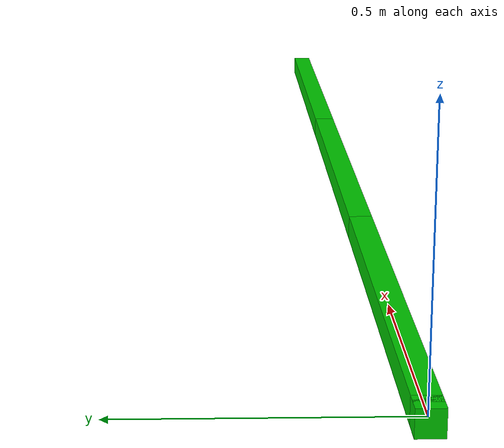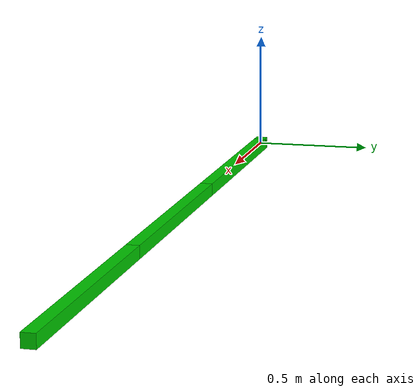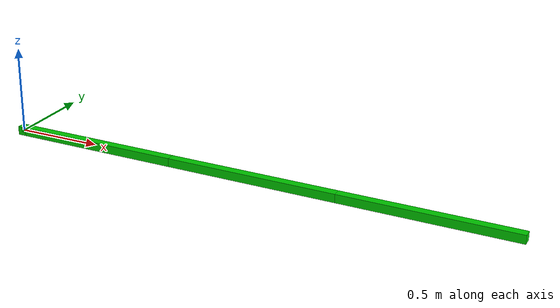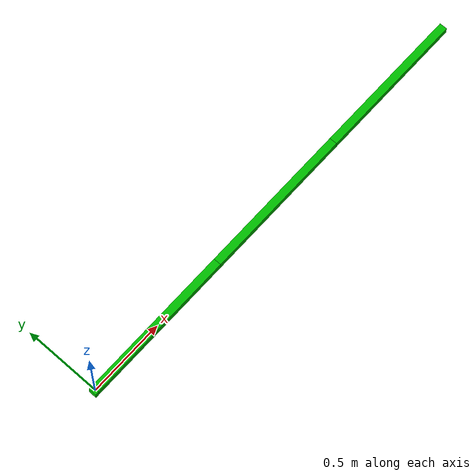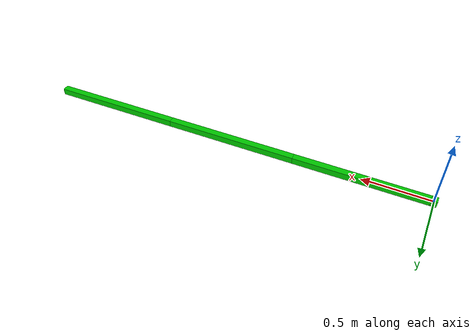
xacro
<?xml version="1.0"?>

<robot name="manipulator" xmlns:xacro="http://www.ros.org/wiki/xacro">
<xacro:include filename="link_dimensions.xacro" />
<xacro:include filename="physics.xacro" />

<link name="base">
    <visual>
      <origin xyz="0 0 0"/>
	   <geometry>
	     <box size="0.05 0.05 ${HEIGHT}" />
	   </geometry>
	   <material name="blue" />
    </visual>
    <collision>
      <geometry>
        <box size="0.0 0.0 0.0" />
      </geometry>
    </collision>
    <inertial>
        <origin xyz="0 0 0" rpy="0 0 0" />
        <mass value="1000000.0" />
        <inertia
            ixx="${ixx}" ixy="${ixy}" ixz="${ixz}"
                 iyy="${iyy}" iyz="${iyz}"
                 izz="${izz}" />
        </inertial>
</link>

<joint name="joint1" type="revolute">
		<axis xyz="0 0 1"/>
		<parent link="base"/>
		<child link="link1"/>
		<origin rpy="0.0 0.0 0.0" xyz="0 0 0"/>
		<limit effort="${effort}" velocity="${velocity}" lower="${lower_bound}" upper="${upper_bound}"/>
                <dynamics damping="${damping}" />
</joint>

<link name="link1">
		<visual>
			<origin rpy="0.0 0.0 0.0" xyz="${LENGTH / 2.0} 0 0"/>
			<geometry>
			        <box size="${LENGTH} ${WIDTH} ${HEIGHT}" />
			</geometry>
			<material name="green">
				<color rgba="0 .8 0 1"/>
			</material>
		</visual>
		<collision>
			<origin rpy="0.0 0.0 0.0" xyz="${(LENGTH / 2.0)} 0 0"/>
			<geometry>
				<box size="${LENGTH} ${WIDTH} ${HEIGHT}" />
			</geometry>
		</collision>
                <inertial>
                        <origin xyz="0 0 0" rpy="0 0 0"/>
                        <mass value="${coxa_mass}" />
                        <inertia ixx="${ixx}" ixy="${ixy}" ixz="${ixz}"
                 iyy="${iyy}" iyz="${iyz}"
                 izz="${izz}" />
                </inertial>
</link>

<joint name="joint2" type="revolute">
		<axis xyz="0 0 1"/>
		<parent link="link1"/>
		<child link="link2"/>
		<origin rpy="0.0 0.0 0.0" xyz="${LENGTH} 0 0"/>
		<limit effort="${effort}" velocity="${velocity}" lower="${lower_bound}" upper="${upper_bound}"/>
                <dynamics damping="${damping}" />
</joint>

<link name="link2">
		<visual>
			<origin rpy="0.0 0.0 0.0" xyz="${LENGTH / 2.0} 0 0"/>
			<geometry>
			        <box size="${LENGTH} ${WIDTH} ${HEIGHT}" />
			</geometry>
			<material name="blue">
				<color rgba="0 .8 0 1"/>
			</material>
		</visual>
		<collision>
			<origin rpy="0.0 0.0 0.0" xyz="${(LENGTH / 2.0)} 0 0"/>
			<geometry>
				<box size="${LENGTH} ${WIDTH} ${HEIGHT}" />
			</geometry>
		</collision>
                <inertial>
                        <origin xyz="0 0 0" rpy="0 0 0"/>
                        <mass value="${coxa_mass}" />
                        <inertia ixx="${ixx}" ixy="${ixy}" ixz="${ixz}"
                 iyy="${iyy}" iyz="${iyz}"
                 izz="${izz}" />
                </inertial>
</link>

<joint name="joint3" type="revolute">
		<axis xyz="0 0 1"/>
		<parent link="link2"/>
		<child link="link3"/>
		<origin rpy="0.0 0.0 0.0" xyz="${LENGTH} 0 0"/>
		<limit effort="${effort}" velocity="${velocity}" lower="${lower_bound}" upper="${upper_bound}"/>
                <dynamics damping="${damping}" />
</joint>

<link name="link3">
		<visual>
			<origin rpy="0.0 0.0 0.0" xyz="${LENGTH / 2.0} 0 0"/>
			<geometry>
			        <box size="${LENGTH} ${WIDTH} ${HEIGHT}" />
			</geometry>
			<material name="green">
				<color rgba="0 .8 0 1"/>
			</material>
		</visual>
		<collision>
			<origin rpy="0.0 0.0 0.0" xyz="${(LENGTH / 2.0)} 0 0"/>
			<geometry>
				<box size="${LENGTH} ${WIDTH} ${HEIGHT}" />
			</geometry>
		</collision>
                <inertial>
                        <origin xyz="0 0 0" rpy="0 0 0"/>
                        <mass value="${coxa_mass}" />
                        <inertia ixx="${ixx}" ixy="${ixy}" ixz="${ixz}"
                 iyy="${iyy}" iyz="${iyz}"
                 izz="${izz}" />
                </inertial>
</link>

</robot>

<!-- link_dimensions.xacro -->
<robot xmlns:xacro="http://www.ros.org/wiki/xacro">
    <!-- Constants -->
    <xacro:property name="LENGTH" value="1.0"/>
    <xacro:property name="WIDTH" value="0.05"/>
    <xacro:property name="HEIGHT" value="0.05"/>
    <xacro:property name="RADIUS" value="0.05"/>
</robot>

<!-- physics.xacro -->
<robot xmlns:xacro="http://www.ros.org/wiki/xacro">

    <!-- Constants -->
    <xacro:property name="PI" value="3.1415926535897931"/>

    <!-- Defines the joint limits -->
    <xacro:property name="effort" value="10" />
    <xacro:property name="velocity" value="3.1415926535897931" />
    <xacro:property name="lower_bound" value="-2.14" />
    <xacro:property name="upper_bound" value="2.14" />

    <!-- Defines the joint dyamics -->
    <xacro:property name="damping" value="0.7" />

    <xacro:property name="body_mass" value="3" />

    <xacro:property name="coxa_mass" value="1" />
    <xacro:property name="femour_mass" value="1" />
    <xacro:property name="tibia_mass" value="1" />

    <!-- Inertia tensor -->
    <xacro:property name="ixx" value="0.364857222" />
    <xacro:property name="ixy" value="0.005215877" />
    <xacro:property name="ixz" value="0.071534842" />

    <xacro:property name="iyy" value="1.507736897" />
    <xacro:property name="iyz" value="-0.001310770" />
    <xacro:property name="izz" value="1.659310749" />
</robot>
